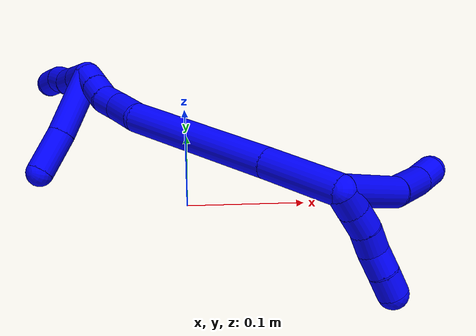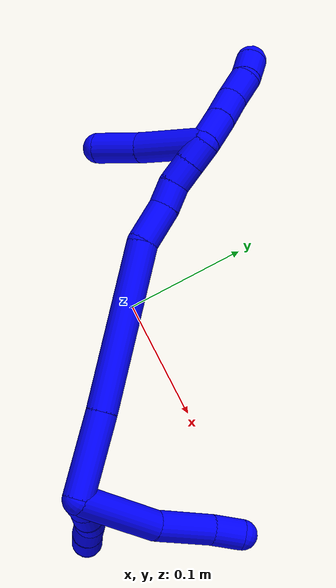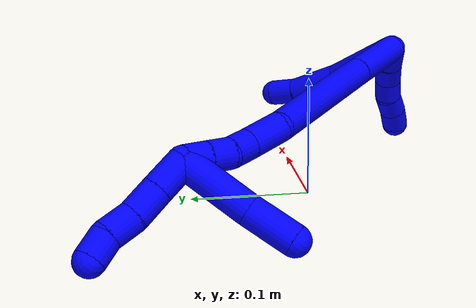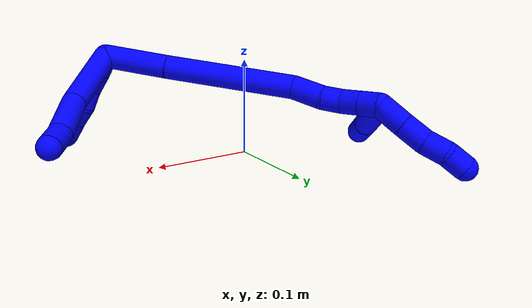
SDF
<sdf version="1.7">
 <world name="default">
  <model name="1">
   <static>0</static>
   <link name="1">
    <collision name="collision-cylinder-e_1_2_8">
     <pose>0.001529 0.001525 -0.037037 -3.10044 0.041235 -1.57283</pose>
     <geometry><cylinder><radius>0.0125</radius><length>0.074199</length></cylinder></geometry>
     <surface>
      <friction><ode><mu>1.16</mu><mu2>1.16</mu2><slip1>0</slip1><slip2>0</slip2></ode></friction>
      <contact><ode><kp>1e+06</kp><kd>1</kd><max_vel>0</max_vel><min_depth>0.001</min_depth></ode></contact>
     </surface>
    </collision>
    <visual name="visual-cylinder-e_1_2_8">
     <pose>0.001529 0.001525 -0.037037 -3.10044 0.041235 -1.57283</pose>
     <geometry><cylinder><radius>0.0125</radius><length>0.074199</length></cylinder></geometry>
     <material><ambient>0 0 1 1</ambient></material>
    </visual>
    <collision name="collision-cylinder-e_2_8_9">
     <pose>0.001996 0.010051 -0.097943 -2.85629 -0.042695 0.295147</pose>
     <geometry><cylinder><radius>0.0125</radius><length>0.049795</length></cylinder></geometry>
     <surface>
      <friction><ode><mu>1.16</mu><mu2>1.16</mu2><slip1>0</slip1><slip2>0</slip2></ode></friction>
      <contact><ode><kp>1e+06</kp><kd>1</kd><max_vel>0</max_vel><min_depth>0.001</min_depth></ode></contact>
     </surface>
    </collision>
    <visual name="visual-cylinder-e_2_8_9">
     <pose>0.001996 0.010051 -0.097943 -2.85629 -0.042695 0.295147</pose>
     <geometry><cylinder><radius>0.0125</radius><length>0.049795</length></cylinder></geometry>
     <material><ambient>0 0 1 1</ambient></material>
    </visual>
    <collision name="collision-cylinder-e_3_9_6">
     <pose>0.002757 0.022173 -0.133624 -2.73253 0.140691 -0.654915</pose>
     <geometry><cylinder><radius>0.0125</radius><length>0.026006</length></cylinder></geometry>
     <surface>
      <friction><ode><mu>1.16</mu><mu2>1.16</mu2><slip1>0</slip1><slip2>0</slip2></ode></friction>
      <contact><ode><kp>1e+06</kp><kd>1</kd><max_vel>0</max_vel><min_depth>0.001</min_depth></ode></contact>
     </surface>
    </collision>
    <visual name="visual-cylinder-e_3_9_6">
     <pose>0.002757 0.022173 -0.133624 -2.73253 0.140691 -0.654915</pose>
     <geometry><cylinder><radius>0.0125</radius><length>0.026006</length></cylinder></geometry>
     <material><ambient>0 0 1 1</ambient></material>
    </visual>
    <collision name="collision-cylinder-e_1_2_10">
     <pose>-0.002177 -0.005886 -0.007785 2.49424 -0.219502 -0.634739</pose>
     <geometry><cylinder><radius>0.0125</radius><length>0.02</length></cylinder></geometry>
     <surface>
      <friction><ode><mu>1.16</mu><mu2>1.16</mu2><slip1>0</slip1><slip2>0</slip2></ode></friction>
      <contact><ode><kp>1e+06</kp><kd>1</kd><max_vel>0</max_vel><min_depth>0.001</min_depth></ode></contact>
     </surface>
    </collision>
    <visual name="visual-cylinder-e_1_2_10">
     <pose>-0.002177 -0.005886 -0.007785 2.49424 -0.219502 -0.634739</pose>
     <geometry><cylinder><radius>0.0125</radius><length>0.02</length></cylinder></geometry>
     <material><ambient>0 0 1 1</ambient></material>
    </visual>
    <collision name="collision-cylinder-e_2_10_11">
     <pose>-0.005952 -0.018464 -0.022828 2.39672 -0.160362 -0.405705</pose>
     <geometry><cylinder><radius>0.0125</radius><length>0.02</length></cylinder></geometry>
     <surface>
      <friction><ode><mu>1.16</mu><mu2>1.16</mu2><slip1>0</slip1><slip2>0</slip2></ode></friction>
      <contact><ode><kp>1e+06</kp><kd>1</kd><max_vel>0</max_vel><min_depth>0.001</min_depth></ode></contact>
     </surface>
    </collision>
    <visual name="visual-cylinder-e_2_10_11">
     <pose>-0.005952 -0.018464 -0.022828 2.39672 -0.160362 -0.405705</pose>
     <geometry><cylinder><radius>0.0125</radius><length>0.02</length></cylinder></geometry>
     <material><ambient>0 0 1 1</ambient></material>
    </visual>
    <collision name="collision-cylinder-e_3_11_12">
     <pose>-0.010685 -0.031965 -0.036704 2.34196 -0.319053 -0.727589</pose>
     <geometry><cylinder><radius>0.0125</radius><length>0.02</length></cylinder></geometry>
     <surface>
      <friction><ode><mu>1.16</mu><mu2>1.16</mu2><slip1>0</slip1><slip2>0</slip2></ode></friction>
      <contact><ode><kp>1e+06</kp><kd>1</kd><max_vel>0</max_vel><min_depth>0.001</min_depth></ode></contact>
     </surface>
    </collision>
    <visual name="visual-cylinder-e_3_11_12">
     <pose>-0.010685 -0.031965 -0.036704 2.34196 -0.319053 -0.727589</pose>
     <geometry><cylinder><radius>0.0125</radius><length>0.02</length></cylinder></geometry>
     <material><ambient>0 0 1 1</ambient></material>
    </visual>
    <collision name="collision-cylinder-e_4_12_13">
     <pose>-0.015128 -0.047184 -0.048572 2.12891 -0.130977 -0.235424</pose>
     <geometry><cylinder><radius>0.0125</radius><length>0.02</length></cylinder></geometry>
     <surface>
      <friction><ode><mu>1.16</mu><mu2>1.16</mu2><slip1>0</slip1><slip2>0</slip2></ode></friction>
      <contact><ode><kp>1e+06</kp><kd>1</kd><max_vel>0</max_vel><min_depth>0.001</min_depth></ode></contact>
     </surface>
    </collision>
    <visual name="visual-cylinder-e_4_12_13">
     <pose>-0.015128 -0.047184 -0.048572 2.12891 -0.130977 -0.235424</pose>
     <geometry><cylinder><radius>0.0125</radius><length>0.02</length></cylinder></geometry>
     <material><ambient>0 0 1 1</ambient></material>
    </visual>
    <collision name="collision-cylinder-e_5_13_5">
     <pose>-0.018373 -0.06338 -0.05979 2.22475 -0.195186 -0.391699</pose>
     <geometry><cylinder><radius>0.0125</radius><length>0.02</length></cylinder></geometry>
     <surface>
      <friction><ode><mu>1.16</mu><mu2>1.16</mu2><slip1>0</slip1><slip2>0</slip2></ode></friction>
      <contact><ode><kp>1e+06</kp><kd>1</kd><max_vel>0</max_vel><min_depth>0.001</min_depth></ode></contact>
     </surface>
    </collision>
    <visual name="visual-cylinder-e_5_13_5">
     <pose>-0.018373 -0.06338 -0.05979 2.22475 -0.195186 -0.391699</pose>
     <geometry><cylinder><radius>0.0125</radius><length>0.02</length></cylinder></geometry>
     <material><ambient>0 0 1 1</ambient></material>
    </visual>
    <collision name="collision-cylinder-e_1_2_14">
     <pose>-0.026844 0.02166 0.001568 -1.49855 -0.890609 0.835675</pose>
     <geometry><cylinder><radius>0.0125</radius><length>0.069057</length></cylinder></geometry>
     <surface>
      <friction><ode><mu>1.16</mu><mu2>1.16</mu2><slip1>0</slip1><slip2>0</slip2></ode></friction>
      <contact><ode><kp>1e+06</kp><kd>1</kd><max_vel>0</max_vel><min_depth>0.001</min_depth></ode></contact>
     </surface>
    </collision>
    <visual name="visual-cylinder-e_1_2_14">
     <pose>-0.026844 0.02166 0.001568 -1.49855 -0.890609 0.835675</pose>
     <geometry><cylinder><radius>0.0125</radius><length>0.069057</length></cylinder></geometry>
     <material><ambient>0 0 1 1</ambient></material>
    </visual>
    <collision name="collision-cylinder-e_2_14_15">
     <pose>-0.106907 0.085562 0.008322 -1.44864 -0.896226 0.804282</pose>
     <geometry><cylinder><radius>0.0125</radius><length>0.136288</length></cylinder></geometry>
     <surface>
      <friction><ode><mu>1.16</mu><mu2>1.16</mu2><slip1>0</slip1><slip2>0</slip2></ode></friction>
      <contact><ode><kp>1e+06</kp><kd>1</kd><max_vel>0</max_vel><min_depth>0.001</min_depth></ode></contact>
     </surface>
    </collision>
    <visual name="visual-cylinder-e_2_14_15">
     <pose>-0.106907 0.085562 0.008322 -1.44864 -0.896226 0.804282</pose>
     <geometry><cylinder><radius>0.0125</radius><length>0.136288</length></cylinder></geometry>
     <material><ambient>0 0 1 1</ambient></material>
    </visual>
    <collision name="collision-cylinder-e_3_15_16">
     <pose>-0.172096 0.138869 0.009503 -1.9181 -0.793956 1.07732</pose>
     <geometry><cylinder><radius>0.0125</radius><length>0.03357</length></cylinder></geometry>
     <surface>
      <friction><ode><mu>1.16</mu><mu2>1.16</mu2><slip1>0</slip1><slip2>0</slip2></ode></friction>
      <contact><ode><kp>1e+06</kp><kd>1</kd><max_vel>0</max_vel><min_depth>0.001</min_depth></ode></contact>
     </surface>
    </collision>
    <visual name="visual-cylinder-e_3_15_16">
     <pose>-0.172096 0.138869 0.009503 -1.9181 -0.793956 1.07732</pose>
     <geometry><cylinder><radius>0.0125</radius><length>0.03357</length></cylinder></geometry>
     <material><ambient>0 0 1 1</ambient></material>
    </visual>
    <collision name="collision-cylinder-e_4_16_17">
     <pose>-0.191399 0.157045 0.004976 -1.64408 -0.799397 0.853327</pose>
     <geometry><cylinder><radius>0.0125</radius><length>0.020457</length></cylinder></geometry>
     <surface>
      <friction><ode><mu>1.16</mu><mu2>1.16</mu2><slip1>0</slip1><slip2>0</slip2></ode></friction>
      <contact><ode><kp>1e+06</kp><kd>1</kd><max_vel>0</max_vel><min_depth>0.001</min_depth></ode></contact>
     </surface>
    </collision>
    <visual name="visual-cylinder-e_4_16_17">
     <pose>-0.191399 0.157045 0.004976 -1.64408 -0.799397 0.853327</pose>
     <geometry><cylinder><radius>0.0125</radius><length>0.020457</length></cylinder></geometry>
     <material><ambient>0 0 1 1</ambient></material>
    </visual>
    <collision name="collision-cylinder-e_5_17_18">
     <pose>-0.203929 0.172819 0.002682 -1.77255 -0.531344 0.643611</pose>
     <geometry><cylinder><radius>0.0125</radius><length>0.020512</length></cylinder></geometry>
     <surface>
      <friction><ode><mu>1.16</mu><mu2>1.16</mu2><slip1>0</slip1><slip2>0</slip2></ode></friction>
      <contact><ode><kp>1e+06</kp><kd>1</kd><max_vel>0</max_vel><min_depth>0.001</min_depth></ode></contact>
     </surface>
    </collision>
    <visual name="visual-cylinder-e_5_17_18">
     <pose>-0.203929 0.172819 0.002682 -1.77255 -0.531344 0.643611</pose>
     <geometry><cylinder><radius>0.0125</radius><length>0.020512</length></cylinder></geometry>
     <material><ambient>0 0 1 1</ambient></material>
    </visual>
    <collision name="collision-cylinder-e_6_18_1">
     <pose>-0.21423 0.189968 -0.000851 -1.77537 -0.532263 0.646427</pose>
     <geometry><cylinder><radius>0.0125</radius><length>0.020116</length></cylinder></geometry>
     <surface>
      <friction><ode><mu>1.16</mu><mu2>1.16</mu2><slip1>0</slip1><slip2>0</slip2></ode></friction>
      <contact><ode><kp>1e+06</kp><kd>1</kd><max_vel>0</max_vel><min_depth>0.001</min_depth></ode></contact>
     </surface>
    </collision>
    <visual name="visual-cylinder-e_6_18_1">
     <pose>-0.21423 0.189968 -0.000851 -1.77537 -0.532263 0.646427</pose>
     <geometry><cylinder><radius>0.0125</radius><length>0.020116</length></cylinder></geometry>
     <material><ambient>0 0 1 1</ambient></material>
    </visual>
    <collision name="collision-cylinder-e_1_1_19">
     <pose>-0.231479 0.203587 -0.008623 -2.43483 -0.993809 1.94697</pose>
     <geometry><cylinder><radius>0.0125</radius><length>0.028981</length></cylinder></geometry>
     <surface>
      <friction><ode><mu>1.16</mu><mu2>1.16</mu2><slip1>0</slip1><slip2>0</slip2></ode></friction>
      <contact><ode><kp>1e+06</kp><kd>1</kd><max_vel>0</max_vel><min_depth>0.001</min_depth></ode></contact>
     </surface>
    </collision>
    <visual name="visual-cylinder-e_1_1_19">
     <pose>-0.231479 0.203587 -0.008623 -2.43483 -0.993809 1.94697</pose>
     <geometry><cylinder><radius>0.0125</radius><length>0.028981</length></cylinder></geometry>
     <material><ambient>0 0 1 1</ambient></material>
    </visual>
    <collision name="collision-cylinder-e_2_19_20">
     <pose>-0.254706 0.213336 -0.019508 -2.38334 -1.02617 1.91061</pose>
     <geometry><cylinder><radius>0.0125</radius><length>0.025916</length></cylinder></geometry>
     <surface>
      <friction><ode><mu>1.16</mu><mu2>1.16</mu2><slip1>0</slip1><slip2>0</slip2></ode></friction>
      <contact><ode><kp>1e+06</kp><kd>1</kd><max_vel>0</max_vel><min_depth>0.001</min_depth></ode></contact>
     </surface>
    </collision>
    <visual name="visual-cylinder-e_2_19_20">
     <pose>-0.254706 0.213336 -0.019508 -2.38334 -1.02617 1.91061</pose>
     <geometry><cylinder><radius>0.0125</radius><length>0.025916</length></cylinder></geometry>
     <material><ambient>0 0 1 1</ambient></material>
    </visual>
    <collision name="collision-cylinder-e_3_20_21">
     <pose>-0.274982 0.224625 -0.028309 -2.10274 -0.87086 1.36594</pose>
     <geometry><cylinder><radius>0.0125</radius><length>0.024038</length></cylinder></geometry>
     <surface>
      <friction><ode><mu>1.16</mu><mu2>1.16</mu2><slip1>0</slip1><slip2>0</slip2></ode></friction>
      <contact><ode><kp>1e+06</kp><kd>1</kd><max_vel>0</max_vel><min_depth>0.001</min_depth></ode></contact>
     </surface>
    </collision>
    <visual name="visual-cylinder-e_3_20_21">
     <pose>-0.274982 0.224625 -0.028309 -2.10274 -0.87086 1.36594</pose>
     <geometry><cylinder><radius>0.0125</radius><length>0.024038</length></cylinder></geometry>
     <material><ambient>0 0 1 1</ambient></material>
    </visual>
    <collision name="collision-cylinder-e_4_21_4">
     <pose>-0.29394 0.234046 -0.035073 -2.37207 -1.18635 2.05978</pose>
     <geometry><cylinder><radius>0.0125</radius><length>0.021066</length></cylinder></geometry>
     <surface>
      <friction><ode><mu>1.16</mu><mu2>1.16</mu2><slip1>0</slip1><slip2>0</slip2></ode></friction>
      <contact><ode><kp>1e+06</kp><kd>1</kd><max_vel>0</max_vel><min_depth>0.001</min_depth></ode></contact>
     </surface>
    </collision>
    <visual name="visual-cylinder-e_4_21_4">
     <pose>-0.29394 0.234046 -0.035073 -2.37207 -1.18635 2.05978</pose>
     <geometry><cylinder><radius>0.0125</radius><length>0.021066</length></cylinder></geometry>
     <material><ambient>0 0 1 1</ambient></material>
    </visual>
    <collision name="collision-cylinder-e_1_1_22">
     <pose>-0.232837 0.173839 0.007934 1.16603 -0.467038 -0.311194</pose>
     <geometry><cylinder><radius>0.0125</radius><length>0.059981</length></cylinder></geometry>
     <surface>
      <friction><ode><mu>1.16</mu><mu2>1.16</mu2><slip1>0</slip1><slip2>0</slip2></ode></friction>
      <contact><ode><kp>1e+06</kp><kd>1</kd><max_vel>0</max_vel><min_depth>0.001</min_depth></ode></contact>
     </surface>
    </collision>
    <visual name="visual-cylinder-e_1_1_22">
     <pose>-0.232837 0.173839 0.007934 1.16603 -0.467038 -0.311194</pose>
     <geometry><cylinder><radius>0.0125</radius><length>0.059981</length></cylinder></geometry>
     <material><ambient>0 0 1 1</ambient></material>
    </visual>
    <collision name="collision-cylinder-e_2_22_3">
     <pose>-0.25524 0.13357 0.027205 1.0623 -0.460922 -0.273946</pose>
     <geometry><cylinder><radius>0.0125</radius><length>0.040019</length></cylinder></geometry>
     <surface>
      <friction><ode><mu>1.16</mu><mu2>1.16</mu2><slip1>0</slip1><slip2>0</slip2></ode></friction>
      <contact><ode><kp>1e+06</kp><kd>1</kd><max_vel>0</max_vel><min_depth>0.001</min_depth></ode></contact>
     </surface>
    </collision>
    <visual name="visual-cylinder-e_2_22_3">
     <pose>-0.25524 0.13357 0.027205 1.0623 -0.460922 -0.273946</pose>
     <geometry><cylinder><radius>0.0125</radius><length>0.040019</length></cylinder></geometry>
     <material><ambient>0 0 1 1</ambient></material>
    </visual>
    <collision name="collision-sphere-3">
     <pose>-0.26414 0.117916 0.03593 0 -0 0</pose>
     <geometry><sphere><radius>0.0125</radius></sphere></geometry>
     <surface>
      <friction><ode><mu>1.16</mu><mu2>1.16</mu2><slip1>0</slip1><slip2>0</slip2></ode></friction>
      <contact><ode><kp>1e+06</kp><kd>1</kd><max_vel>0</max_vel><min_depth>0.001</min_depth></ode></contact>
     </surface>
    </collision>
    <visual name="visual-sphere-3">
     <pose>-0.26414 0.117916 0.03593 0 -0 0</pose>
     <geometry><sphere><radius>0.0125</radius></sphere></geometry>
     <material><ambient>0 0 1 1</ambient></material>
    </visual>
    <collision name="collision-sphere-22">
     <pose>-0.24634 0.149224 0.018479 0 -0 0</pose>
     <geometry><sphere><radius>0.0125</radius></sphere></geometry>
     <surface>
      <friction><ode><mu>1.16</mu><mu2>1.16</mu2><slip1>0</slip1><slip2>0</slip2></ode></friction>
      <contact><ode><kp>1e+06</kp><kd>1</kd><max_vel>0</max_vel><min_depth>0.001</min_depth></ode></contact>
     </surface>
    </collision>
    <visual name="visual-sphere-22">
     <pose>-0.24634 0.149224 0.018479 0 -0 0</pose>
     <geometry><sphere><radius>0.0125</radius></sphere></geometry>
     <material><ambient>0 0 1 1</ambient></material>
    </visual>
    <collision name="collision-sphere-4">
     <pose>-0.303704 0.236795 -0.037911 0 -0 0</pose>
     <geometry><sphere><radius>0.0125</radius></sphere></geometry>
     <surface>
      <friction><ode><mu>1.16</mu><mu2>1.16</mu2><slip1>0</slip1><slip2>0</slip2></ode></friction>
      <contact><ode><kp>1e+06</kp><kd>1</kd><max_vel>0</max_vel><min_depth>0.001</min_depth></ode></contact>
     </surface>
    </collision>
    <visual name="visual-sphere-4">
     <pose>-0.303704 0.236795 -0.037911 0 -0 0</pose>
     <geometry><sphere><radius>0.0125</radius></sphere></geometry>
     <material><ambient>0 0 1 1</ambient></material>
    </visual>
    <collision name="collision-sphere-21">
     <pose>-0.284175 0.231298 -0.032236 0 -0 0</pose>
     <geometry><sphere><radius>0.0125</radius></sphere></geometry>
     <surface>
      <friction><ode><mu>1.16</mu><mu2>1.16</mu2><slip1>0</slip1><slip2>0</slip2></ode></friction>
      <contact><ode><kp>1e+06</kp><kd>1</kd><max_vel>0</max_vel><min_depth>0.001</min_depth></ode></contact>
     </surface>
    </collision>
    <visual name="visual-sphere-21">
     <pose>-0.284175 0.231298 -0.032236 0 -0 0</pose>
     <geometry><sphere><radius>0.0125</radius></sphere></geometry>
     <material><ambient>0 0 1 1</ambient></material>
    </visual>
    <collision name="collision-sphere-20">
     <pose>-0.265789 0.217953 -0.024382 0 -0 0</pose>
     <geometry><sphere><radius>0.0125</radius></sphere></geometry>
     <surface>
      <friction><ode><mu>1.16</mu><mu2>1.16</mu2><slip1>0</slip1><slip2>0</slip2></ode></friction>
      <contact><ode><kp>1e+06</kp><kd>1</kd><max_vel>0</max_vel><min_depth>0.001</min_depth></ode></contact>
     </surface>
    </collision>
    <visual name="visual-sphere-20">
     <pose>-0.265789 0.217953 -0.024382 0 -0 0</pose>
     <geometry><sphere><radius>0.0125</radius></sphere></geometry>
     <material><ambient>0 0 1 1</ambient></material>
    </visual>
    <collision name="collision-sphere-11">
     <pose>-0.007548 -0.025156 -0.030086 0 -0 0</pose>
     <geometry><sphere><radius>0.0125</radius></sphere></geometry>
     <surface>
      <friction><ode><mu>1.16</mu><mu2>1.16</mu2><slip1>0</slip1><slip2>0</slip2></ode></friction>
      <contact><ode><kp>1e+06</kp><kd>1</kd><max_vel>0</max_vel><min_depth>0.001</min_depth></ode></contact>
     </surface>
    </collision>
    <visual name="visual-sphere-11">
     <pose>-0.007548 -0.025156 -0.030086 0 -0 0</pose>
     <geometry><sphere><radius>0.0125</radius></sphere></geometry>
     <material><ambient>0 0 1 1</ambient></material>
    </visual>
    <collision name="collision-sphere-10">
     <pose>-0.004355 -0.011772 -0.015571 0 -0 0</pose>
     <geometry><sphere><radius>0.0125</radius></sphere></geometry>
     <surface>
      <friction><ode><mu>1.16</mu><mu2>1.16</mu2><slip1>0</slip1><slip2>0</slip2></ode></friction>
      <contact><ode><kp>1e+06</kp><kd>1</kd><max_vel>0</max_vel><min_depth>0.001</min_depth></ode></contact>
     </surface>
    </collision>
    <visual name="visual-sphere-10">
     <pose>-0.004355 -0.011772 -0.015571 0 -0 0</pose>
     <geometry><sphere><radius>0.0125</radius></sphere></geometry>
     <material><ambient>0 0 1 1</ambient></material>
    </visual>
    <collision name="collision-sphere-6">
     <pose>0.00458 0.027293 -0.145436 0 -0 0</pose>
     <geometry><sphere><radius>0.0125</radius></sphere></geometry>
     <surface>
      <friction><ode><mu>1.16</mu><mu2>1.16</mu2><slip1>0</slip1><slip2>0</slip2></ode></friction>
      <contact><ode><kp>1e+06</kp><kd>1</kd><max_vel>0</max_vel><min_depth>0.001</min_depth></ode></contact>
     </surface>
    </collision>
    <visual name="visual-sphere-6">
     <pose>0.00458 0.027293 -0.145436 0 -0 0</pose>
     <geometry><sphere><radius>0.0125</radius></sphere></geometry>
     <material><ambient>0 0 1 1</ambient></material>
    </visual>
    <collision name="collision-sphere-9">
     <pose>0.000933 0.017052 -0.121812 0 -0 0</pose>
     <geometry><sphere><radius>0.0125</radius></sphere></geometry>
     <surface>
      <friction><ode><mu>1.16</mu><mu2>1.16</mu2><slip1>0</slip1><slip2>0</slip2></ode></friction>
      <contact><ode><kp>1e+06</kp><kd>1</kd><max_vel>0</max_vel><min_depth>0.001</min_depth></ode></contact>
     </surface>
    </collision>
    <visual name="visual-sphere-9">
     <pose>0.000933 0.017052 -0.121812 0 -0 0</pose>
     <geometry><sphere><radius>0.0125</radius></sphere></geometry>
     <material><ambient>0 0 1 1</ambient></material>
    </visual>
    <collision name="collision-sphere-2">
     <geometry><sphere><radius>0.0125</radius></sphere></geometry>
     <surface>
      <friction><ode><mu>1.16</mu><mu2>1.16</mu2><slip1>0</slip1><slip2>0</slip2></ode></friction>
      <contact><ode><kp>1e+06</kp><kd>1</kd><max_vel>0</max_vel><min_depth>0.001</min_depth></ode></contact>
     </surface>
    </collision>
    <visual name="visual-sphere-2">
     <geometry><sphere><radius>0.0125</radius></sphere></geometry>
     <material><ambient>0 0 1 1</ambient></material>
    </visual>
    <collision name="collision-sphere-19">
     <pose>-0.243623 0.20872 -0.014634 0 -0 0</pose>
     <geometry><sphere><radius>0.0125</radius></sphere></geometry>
     <surface>
      <friction><ode><mu>1.16</mu><mu2>1.16</mu2><slip1>0</slip1><slip2>0</slip2></ode></friction>
      <contact><ode><kp>1e+06</kp><kd>1</kd><max_vel>0</max_vel><min_depth>0.001</min_depth></ode></contact>
     </surface>
    </collision>
    <visual name="visual-sphere-19">
     <pose>-0.243623 0.20872 -0.014634 0 -0 0</pose>
     <geometry><sphere><radius>0.0125</radius></sphere></geometry>
     <material><ambient>0 0 1 1</ambient></material>
    </visual>
    <collision name="collision-sphere-8">
     <pose>0.003059 0.00305 -0.074073 0 -0 0</pose>
     <geometry><sphere><radius>0.0125</radius></sphere></geometry>
     <surface>
      <friction><ode><mu>1.16</mu><mu2>1.16</mu2><slip1>0</slip1><slip2>0</slip2></ode></friction>
      <contact><ode><kp>1e+06</kp><kd>1</kd><max_vel>0</max_vel><min_depth>0.001</min_depth></ode></contact>
     </surface>
    </collision>
    <visual name="visual-sphere-8">
     <pose>0.003059 0.00305 -0.074073 0 -0 0</pose>
     <geometry><sphere><radius>0.0125</radius></sphere></geometry>
     <material><ambient>0 0 1 1</ambient></material>
    </visual>
    <collision name="collision-sphere-12">
     <pose>-0.013822 -0.038774 -0.043322 0 -0 0</pose>
     <geometry><sphere><radius>0.0125</radius></sphere></geometry>
     <surface>
      <friction><ode><mu>1.16</mu><mu2>1.16</mu2><slip1>0</slip1><slip2>0</slip2></ode></friction>
      <contact><ode><kp>1e+06</kp><kd>1</kd><max_vel>0</max_vel><min_depth>0.001</min_depth></ode></contact>
     </surface>
    </collision>
    <visual name="visual-sphere-12">
     <pose>-0.013822 -0.038774 -0.043322 0 -0 0</pose>
     <geometry><sphere><radius>0.0125</radius></sphere></geometry>
     <material><ambient>0 0 1 1</ambient></material>
    </visual>
    <collision name="collision-sphere-13">
     <pose>-0.016434 -0.055594 -0.053823 0 -0 0</pose>
     <geometry><sphere><radius>0.0125</radius></sphere></geometry>
     <surface>
      <friction><ode><mu>1.16</mu><mu2>1.16</mu2><slip1>0</slip1><slip2>0</slip2></ode></friction>
      <contact><ode><kp>1e+06</kp><kd>1</kd><max_vel>0</max_vel><min_depth>0.001</min_depth></ode></contact>
     </surface>
    </collision>
    <visual name="visual-sphere-13">
     <pose>-0.016434 -0.055594 -0.053823 0 -0 0</pose>
     <geometry><sphere><radius>0.0125</radius></sphere></geometry>
     <material><ambient>0 0 1 1</ambient></material>
    </visual>
    <collision name="collision-sphere-5">
     <pose>-0.020313 -0.071166 -0.065758 0 -0 0</pose>
     <geometry><sphere><radius>0.0125</radius></sphere></geometry>
     <surface>
      <friction><ode><mu>1.16</mu><mu2>1.16</mu2><slip1>0</slip1><slip2>0</slip2></ode></friction>
      <contact><ode><kp>1e+06</kp><kd>1</kd><max_vel>0</max_vel><min_depth>0.001</min_depth></ode></contact>
     </surface>
    </collision>
    <visual name="visual-sphere-5">
     <pose>-0.020313 -0.071166 -0.065758 0 -0 0</pose>
     <geometry><sphere><radius>0.0125</radius></sphere></geometry>
     <material><ambient>0 0 1 1</ambient></material>
    </visual>
    <collision name="collision-sphere-14">
     <pose>-0.053689 0.043319 0.003135 0 -0 0</pose>
     <geometry><sphere><radius>0.0125</radius></sphere></geometry>
     <surface>
      <friction><ode><mu>1.16</mu><mu2>1.16</mu2><slip1>0</slip1><slip2>0</slip2></ode></friction>
      <contact><ode><kp>1e+06</kp><kd>1</kd><max_vel>0</max_vel><min_depth>0.001</min_depth></ode></contact>
     </surface>
    </collision>
    <visual name="visual-sphere-14">
     <pose>-0.053689 0.043319 0.003135 0 -0 0</pose>
     <geometry><sphere><radius>0.0125</radius></sphere></geometry>
     <material><ambient>0 0 1 1</ambient></material>
    </visual>
    <collision name="collision-sphere-15">
     <pose>-0.160126 0.127805 0.013508 0 -0 0</pose>
     <geometry><sphere><radius>0.0125</radius></sphere></geometry>
     <surface>
      <friction><ode><mu>1.16</mu><mu2>1.16</mu2><slip1>0</slip1><slip2>0</slip2></ode></friction>
      <contact><ode><kp>1e+06</kp><kd>1</kd><max_vel>0</max_vel><min_depth>0.001</min_depth></ode></contact>
     </surface>
    </collision>
    <visual name="visual-sphere-15">
     <pose>-0.160126 0.127805 0.013508 0 -0 0</pose>
     <geometry><sphere><radius>0.0125</radius></sphere></geometry>
     <material><ambient>0 0 1 1</ambient></material>
    </visual>
    <collision name="collision-sphere-16">
     <pose>-0.184066 0.149933 0.005498 0 -0 0</pose>
     <geometry><sphere><radius>0.0125</radius></sphere></geometry>
     <surface>
      <friction><ode><mu>1.16</mu><mu2>1.16</mu2><slip1>0</slip1><slip2>0</slip2></ode></friction>
      <contact><ode><kp>1e+06</kp><kd>1</kd><max_vel>0</max_vel><min_depth>0.001</min_depth></ode></contact>
     </surface>
    </collision>
    <visual name="visual-sphere-16">
     <pose>-0.184066 0.149933 0.005498 0 -0 0</pose>
     <geometry><sphere><radius>0.0125</radius></sphere></geometry>
     <material><ambient>0 0 1 1</ambient></material>
    </visual>
    <collision name="collision-sphere-17">
     <pose>-0.198732 0.164156 0.004454 0 -0 0</pose>
     <geometry><sphere><radius>0.0125</radius></sphere></geometry>
     <surface>
      <friction><ode><mu>1.16</mu><mu2>1.16</mu2><slip1>0</slip1><slip2>0</slip2></ode></friction>
      <contact><ode><kp>1e+06</kp><kd>1</kd><max_vel>0</max_vel><min_depth>0.001</min_depth></ode></contact>
     </surface>
    </collision>
    <visual name="visual-sphere-17">
     <pose>-0.198732 0.164156 0.004454 0 -0 0</pose>
     <geometry><sphere><radius>0.0125</radius></sphere></geometry>
     <material><ambient>0 0 1 1</ambient></material>
    </visual>
    <collision name="collision-sphere-18">
     <pose>-0.209125 0.181482 0.00091 0 -0 0</pose>
     <geometry><sphere><radius>0.0125</radius></sphere></geometry>
     <surface>
      <friction><ode><mu>1.16</mu><mu2>1.16</mu2><slip1>0</slip1><slip2>0</slip2></ode></friction>
      <contact><ode><kp>1e+06</kp><kd>1</kd><max_vel>0</max_vel><min_depth>0.001</min_depth></ode></contact>
     </surface>
    </collision>
    <visual name="visual-sphere-18">
     <pose>-0.209125 0.181482 0.00091 0 -0 0</pose>
     <geometry><sphere><radius>0.0125</radius></sphere></geometry>
     <material><ambient>0 0 1 1</ambient></material>
    </visual>
    <collision name="collision-sphere-1">
     <pose>-0.219334 0.198454 -0.002611 0 -0 0</pose>
     <geometry><sphere><radius>0.0125</radius></sphere></geometry>
     <surface>
      <friction><ode><mu>1.16</mu><mu2>1.16</mu2><slip1>0</slip1><slip2>0</slip2></ode></friction>
      <contact><ode><kp>1e+06</kp><kd>1</kd><max_vel>0</max_vel><min_depth>0.001</min_depth></ode></contact>
     </surface>
    </collision>
    <visual name="visual-sphere-1">
     <pose>-0.219334 0.198454 -0.002611 0 -0 0</pose>
     <geometry><sphere><radius>0.0125</radius></sphere></geometry>
     <material><ambient>0 0 1 1</ambient></material>
    </visual>
    <inertial>
     <pose>-0.114217 0.085042 -0.01803 0 -0 0</pose>
     <mass>0.75</mass>
     <inertia><ixx>0.0002</ixx><ixy>0</ixy><ixz>0</ixz><iyy>0.00025</iyy><iyz>0</iyz><izz>6e-05</izz></inertia>
    </inertial>
   </link>
   <pose>0.111857 -0.103492 0.099211 0.774034 -0.698314 -0.309905</pose>
  </model>
 </world>
</sdf>
